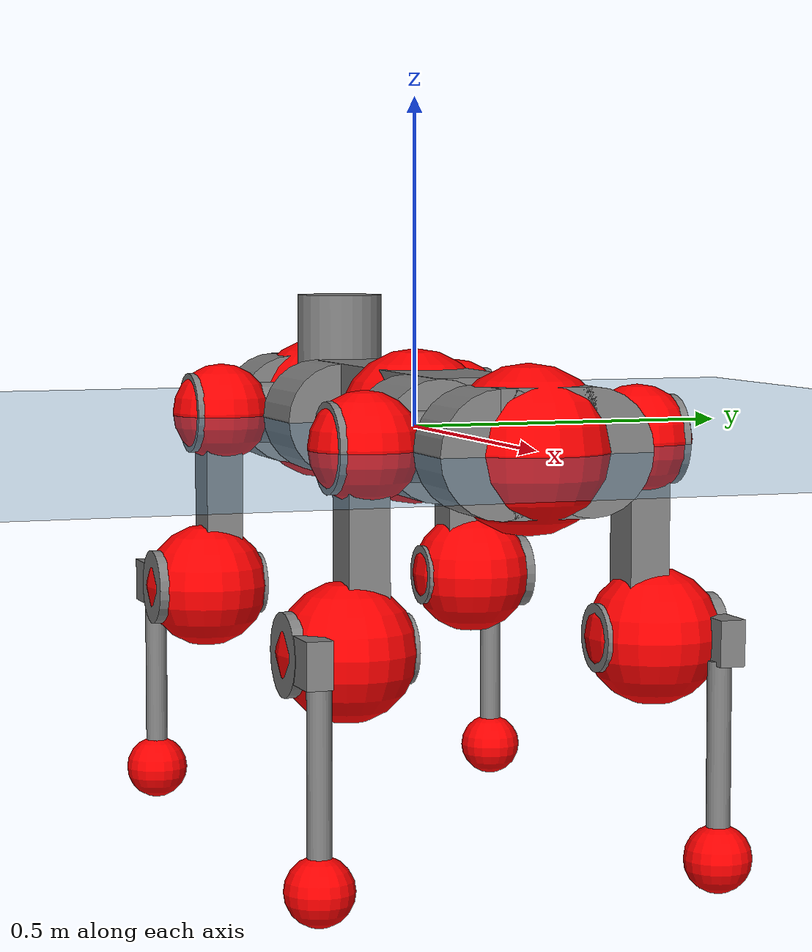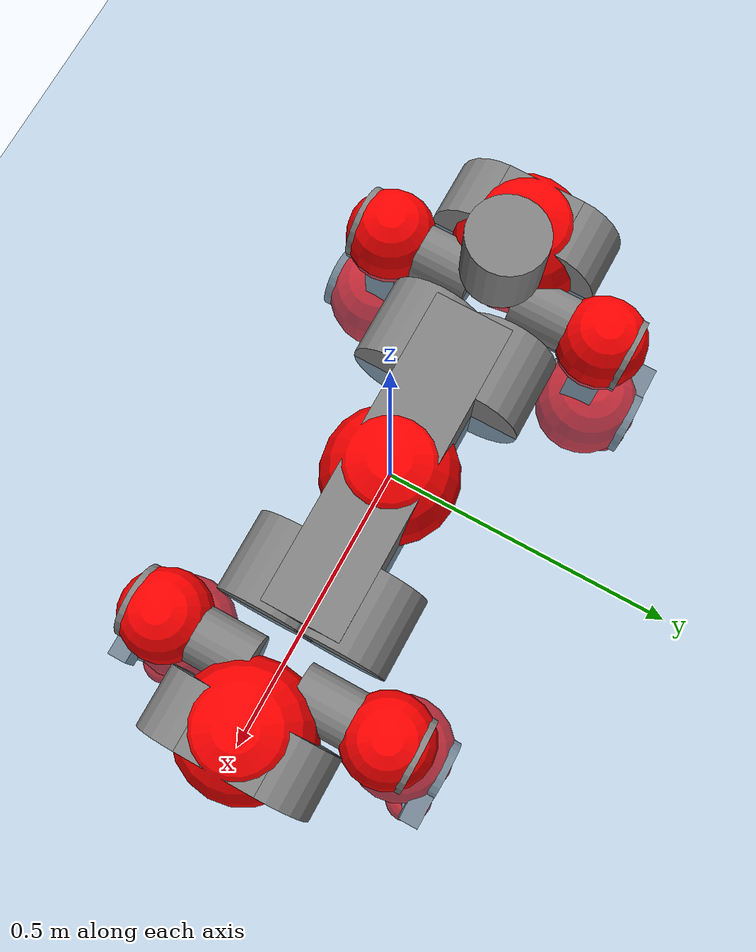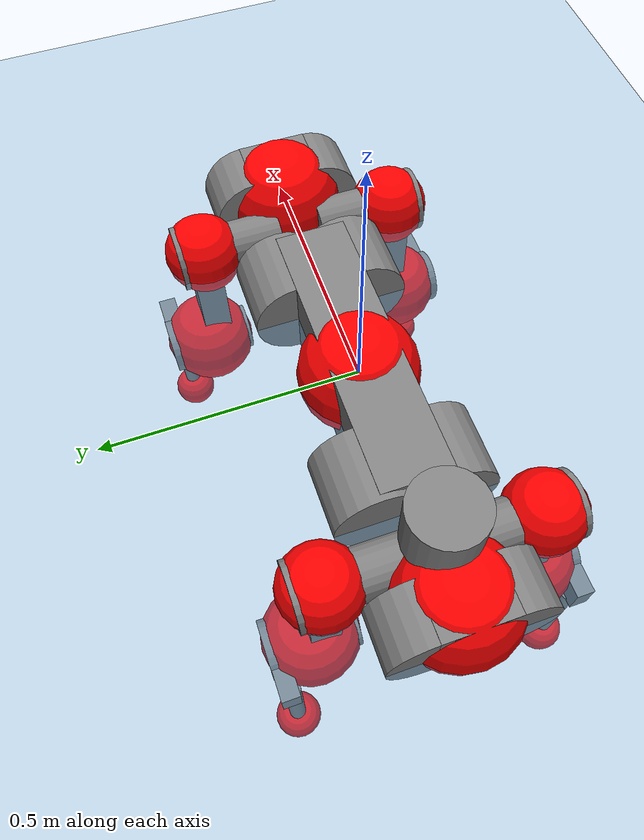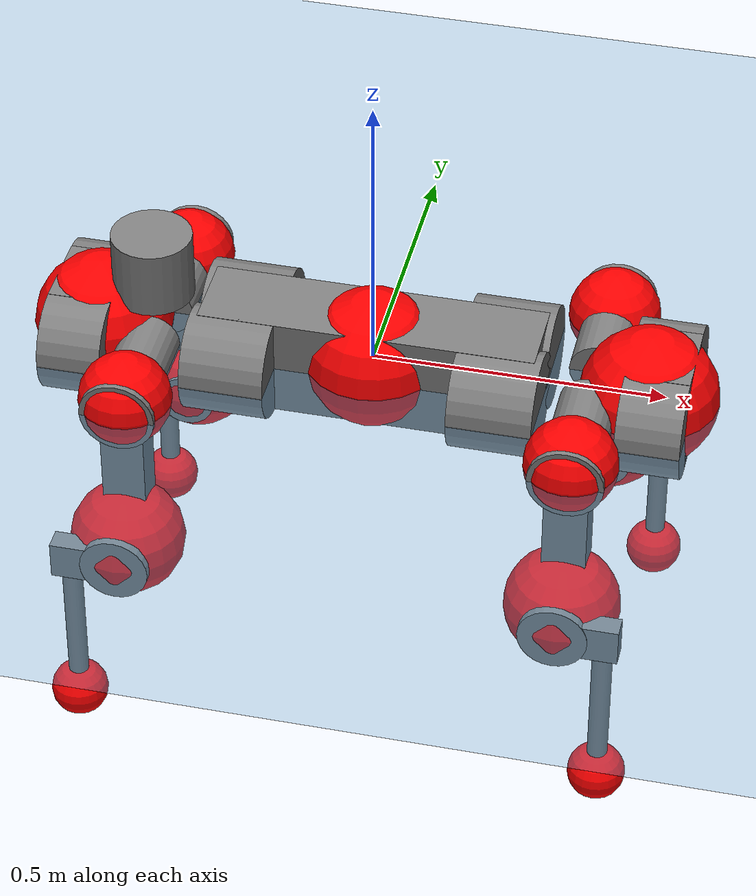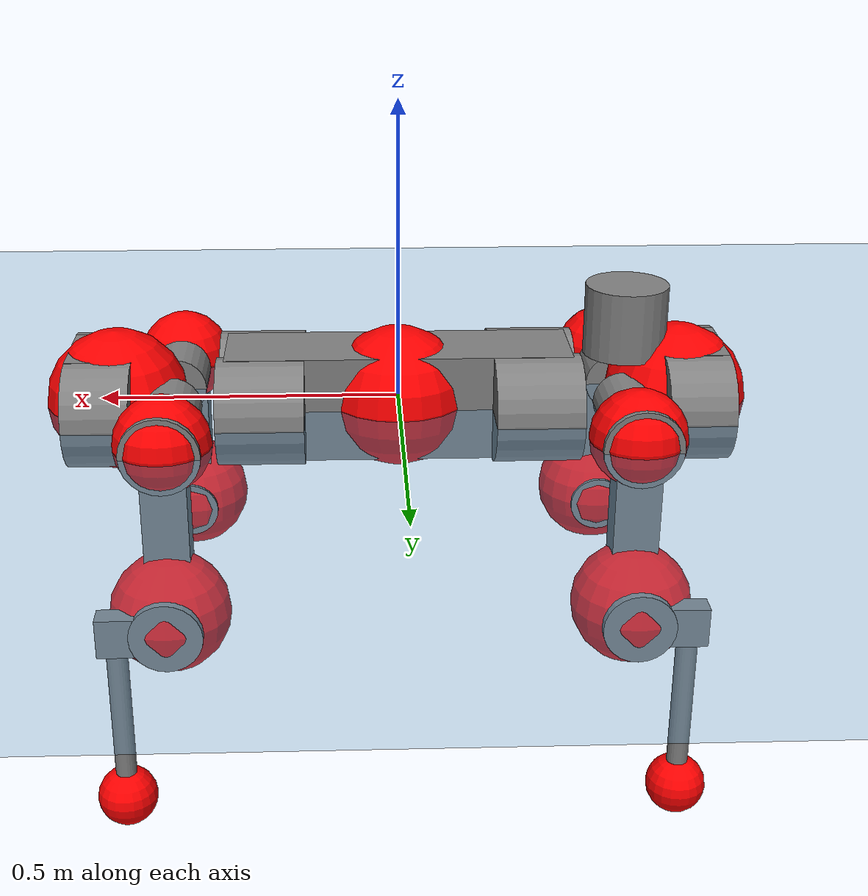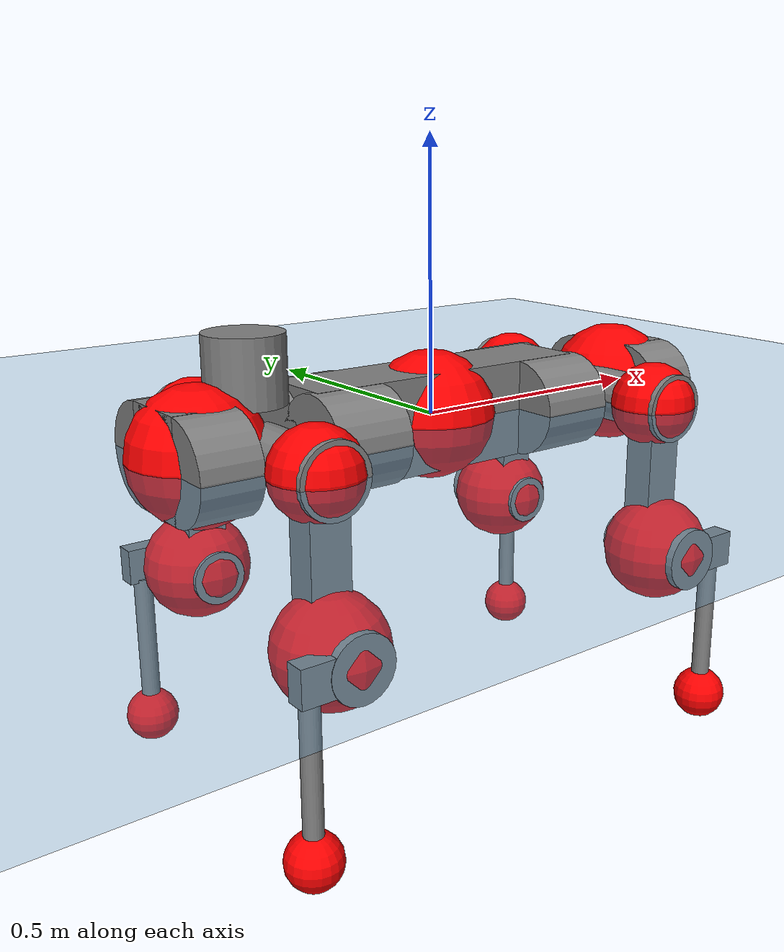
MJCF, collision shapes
<mujoco model="anymal_c">
  <compiler angle="radian" assetdir="assets" balanceinertia="true" inertiafromgeom="false"/>

  <option timestep="0.005" density="1.2" viscosity="2e-05"/>

  <size nkey="1"/>

  <visual>
    <quality shadowsize="8192"/>
    <map shadowclip="0.5"/>
  </visual>

  <default>
    <default class="/">
      <material specular="0" shininess="0.25"/>
      <geom contype="0" conaffinity="0" group="1" solref="-1000 -80"/>
      <site size="0.01 0.005 0.005" group="5"/>
      <general forcelimited="true" forcerange="-80 80" biastype="affine" gainprm="80" biasprm="0 -80 -2"/>
      <default class="anymal_c">
        <joint armature="0.01" damping="0.01" frictionloss="0.1"/>
        <default class="visual">
          <geom type="mesh" group="2"/>
          <default class="visual_zflip"/>
        </default>
        <default class="collision">
          <geom type="cylinder" group="3"/>
          <default class="foot">
            <geom size="0.03 0 0" type="sphere" condim="6" priority="1" friction="0.8 0.02 0.01" solimp="0.015 1 0.03"/>
          </default>
        </default>
      </default>
      <default class="reward_collision_sphere">
        <geom group="5" rgba="1 0 0 1"/>
      </default>
    </default>
  </default>

  <asset>
    <texture type="skybox" colorspace="auto" name="//unnamed_texture_0" builtin="gradient" rgb1="0.95 0.95 0.95" rgb2="0.95 0.95 0.95" width="100" height="600"/>
    <texture type="2d" colorspace="auto" name="texplane" builtin="checker" rgb1="0.345 0.575 0.748" rgb2="0.345 0.575 0.748" markrgb="1 1 1" width="512" height="512"/>
    <texture type="2d" colorspace="linear" name="base" file="base.png"/>
    <texture type="2d" colorspace="linear" name="top_shell" file="top_shell.png"/>
    <texture type="2d" colorspace="linear" name="bottom_shell" file="bottom_shell.png"/>
    <texture type="2d" colorspace="linear" name="remote" file="remote.png"/>
    <texture type="2d" colorspace="linear" name="hatch" file="hatch.png"/>
    <texture type="2d" colorspace="linear" name="handle" file="handle.png"/>
    <texture type="2d" colorspace="linear" name="face" file="face.png"/>
    <texture type="2d" colorspace="linear" name="battery" file="battery.png"/>
    <texture type="2d" colorspace="linear" name="lidar_cage" file="lidar_cage.png"/>
    <texture type="2d" colorspace="linear" name="depth_camera" file="depth_camera.png"/>
    <texture type="2d" colorspace="linear" name="wide_angle_camera" file="wide_angle_camera.png"/>
    <texture type="2d" colorspace="linear" name="lidar" file="lidar.png"/>
    <texture type="2d" colorspace="linear" name="drive" file="drive.png"/>
    <texture type="2d" colorspace="linear" name="hip_l" file="hip_l.png"/>
    <texture type="2d" colorspace="linear" name="shank_l" file="shank_l.png"/>
    <texture type="2d" colorspace="linear" name="foot" file="foot.png"/>
    <texture type="2d" colorspace="linear" name="thigh" file="thigh.png"/>
    <texture type="2d" colorspace="linear" name="shank_r" file="shank_r.png"/>
    <texture type="2d" colorspace="linear" name="hip_r" file="hip_r.png"/>
    <material name="MatPlane" class="/" texture="texplane" texuniform="true" texrepeat="2 2" specular="0.9" shininess="0.5"/>
    <material name="black_plastic" class="/" rgba="0.007 0.007 0.007 1"/>
    <material name="green" class="/" rgba="0.052 0.178 0.033 1"/>
    <material name="red" class="/" rgba="0.178 0.006 0.005 1"/>
    <material name="yellow" class="/" rgba="0.178 0.119 0.006 1"/>
    <material name="lwl" class="/" rgba="0.8 0.8 0.8 1"/>
    <material name="base" class="/" texture="base"/>
    <material name="top_shell" class="/" texture="top_shell"/>
    <material name="bottom_shell" class="/" texture="bottom_shell"/>
    <material name="hip_l" class="/" texture="hip_l"/>
    <material name="thigh" class="/" texture="thigh"/>
    <material name="shank_l" class="/" texture="shank_l"/>
    <material name="foot" class="/" texture="foot"/>
    <material name="hip_r" class="/" texture="hip_r"/>
    <material name="shank" class="/" texture="shank_r"/>
    <material name="hatch" class="/" texture="hatch"/>
    <material name="remote" class="/" texture="remote"/>
    <material name="handle" class="/" texture="handle"/>
    <material name="face" class="/" texture="face"/>
    <material name="depth_camera" class="/" texture="depth_camera"/>
    <material name="wide_angle_camera" class="/" texture="wide_angle_camera"/>
    <material name="battery" class="/" texture="battery"/>
    <material name="lidar_cage" class="/" texture="lidar_cage"/>
    <material name="lidar" class="/" texture="lidar"/>
    <material name="drive" class="/" texture="drive"/>
    <mesh name="base_0" class="/" file="base_0.obj"/>
    <mesh name="base_1" class="/" file="base_1.obj"/>
    <mesh name="base_2" class="/" file="base_2.obj"/>
    <mesh name="base_3" class="/" file="base_3.obj"/>
    <mesh name="base_4" class="/" file="base_4.obj"/>
    <mesh name="base_5" class="/" file="base_5.obj"/>
    <mesh name="top_shell" class="/" file="top_shell.obj"/>
    <mesh name="bottom_shell" class="/" file="bottom_shell.obj"/>
    <mesh name="remote" class="/" file="remote.obj"/>
    <mesh name="handle" class="/" file="handle.obj"/>
    <mesh name="face" class="/" file="face.obj"/>
    <mesh name="wide_angle_camera" class="/" file="wide_angle_camera.obj"/>
    <mesh name="depth_camera" class="/" file="depth_camera.obj"/>
    <mesh name="battery" class="/" file="battery.obj"/>
    <mesh name="lidar_cage" class="/" file="lidar_cage.obj"/>
    <mesh name="lidar" class="/" file="lidar.obj"/>
    <mesh name="drive" class="/" file="drive.obj"/>
    <mesh name="hip_l" class="/" file="hip_l.obj"/>
    <mesh name="thigh" class="/" file="thigh.obj"/>
    <mesh name="shank_l" class="/" file="shank_l.obj"/>
    <mesh name="foot" class="/" file="foot.obj"/>
    <mesh name="hip_r" class="/" file="hip_r.obj"/>
    <mesh name="hatch" class="/" file="hatch.obj"/>
    <mesh name="shank_r" class="/" file="shank_r.obj"/>
  </asset>

  <worldbody>
    <geom name="floor" class="/" size="100 100 0.125" type="plane" group="0" material="MatPlane"/>
    <light name="toplight_shadow" class="/" pos="0 0 5" dir="0.0990148 0.0990148 -0.990148" type="directional" ambient="0.04 0.04 0.04" diffuse="0.55 0.55 0.55" specular="0.12 0.12 0.12"/>
    <light name="toplight_fill" class="/" pos="0 0 5" dir="0.0990148 0.0990148 -0.990148" type="directional" castshadow="false" ambient="0.04 0.04 0.04" diffuse="0.3 0.3 0.3" specular="0.08 0.08 0.08"/>
    <body name="trunk" childclass="anymal_c" pos="0.000842464 6.04925e-05 0.00057326" quat="1 -0.000247224 0.000213578 -0.000274971">
      <inertial pos="0.00317702 -0.000590824 0.0485354" quat="0.499157 0.5008 0.501761 0.498274" mass="18.5216" diaginertia="0.800451 0.443421 0.206822"/>
      <joint name="//unnamed_joint_0" type="free" armature="0" damping="0" frictionloss="0"/>
      <geom name="//unnamed_geom_1" class="visual" material="green" mesh="base_0"/>
      <geom name="//unnamed_geom_2" class="visual" material="yellow" mesh="base_1"/>
      <geom name="//unnamed_geom_3" class="visual" material="red" mesh="base_2"/>
      <geom name="//unnamed_geom_4" class="visual" material="black_plastic" mesh="base_3"/>
      <geom name="//unnamed_geom_5" class="visual" material="lwl" mesh="base_4"/>
      <geom name="//unnamed_geom_6" class="visual" material="base" mesh="base_5"/>
      <geom name="trunk_1" class="collision" size="0.286977 0.0692703 0.0890618" type="box"/>
      <geom name="trunk_2" class="collision" size="0.0890618 0.0717442" pos="0.227368 0.0654268 0" quat="0.707107 0 0.707107 0"/>
      <geom name="trunk_3" class="collision" size="0.0890618 0.0717442" pos="-0.227368 0.0654268 0" quat="0.707107 0 0.707107 0"/>
      <geom name="trunk_4" class="collision" size="0.0890618 0.0717442" pos="0.227368 -0.0654268 0" quat="0.707107 0 0.707107 0"/>
      <geom name="trunk_5" class="collision" size="0.0890618 0.0717442" pos="-0.227368 -0.0654268 0" quat="0.707107 0 0.707107 0"/>
      <geom name="//unnamed_geom_12" class="visual" material="top_shell" mesh="top_shell"/>
      <geom name="//unnamed_geom_13" class="visual" material="bottom_shell" mesh="bottom_shell"/>
      <geom name="//unnamed_geom_14" class="visual" material="remote" mesh="remote"/>
      <geom name="//unnamed_geom_15" class="visual" material="handle" mesh="handle"/>
      <geom name="//unnamed_geom_16" class="visual" pos="0.433305 0 0" quat="1 0 0 0" material="face" mesh="face"/>
      <geom name="trunk_6" class="collision" size="0.0544267 0.0692703 0.0890618" pos="0.490801 0 0" type="box"/>
      <geom name="//unnamed_geom_18" class="collision" size="0.0890618 0.0544267" pos="0.490801 0.0654268 0" quat="0.707107 0 0.707107 0"/>
      <geom name="//unnamed_geom_19" class="collision" size="0.0890618 0.0544267" pos="0.490801 -0.0654268 0" quat="0.707107 0 0.707107 0"/>
      <geom name="//unnamed_geom_20" class="visual" pos="0.482592 0 -0.028439" quat="0.965926 0 0.258819 0" material="depth_camera" mesh="depth_camera"/>
      <geom name="//unnamed_geom_21" class="visual" pos="0.536274 0 0.0148007" material="wide_angle_camera" mesh="wide_angle_camera"/>
      <geom name="//unnamed_geom_22" class="visual_zflip" pos="-0.433305 0 0" quat="0 0 0 1" material="face" mesh="face"/>
      <geom name="trunk_7" class="collision" size="0.0544267 0.0692703 0.0890618" pos="-0.490801 0 0" quat="0 0 0 1" type="box"/>
      <geom name="//unnamed_geom_24" class="collision" size="0.0890618 0.0544267" pos="-0.490801 -0.0654268 0" quat="0 -0.707107 0 0.707107"/>
      <geom name="//unnamed_geom_25" class="collision" size="0.0890618 0.0544267" pos="-0.490801 0.0654268 0" quat="0 -0.707107 0 0.707107"/>
      <geom name="//unnamed_geom_26" class="visual" pos="-0.482592 0 -0.028439" quat="0 -0.258819 0 0.965926" material="depth_camera" mesh="depth_camera"/>
      <geom name="//unnamed_geom_27" class="visual_zflip" pos="-0.536274 0 0.0148007" quat="0 0 0 1" material="wide_angle_camera" mesh="wide_angle_camera"/>
      <geom name="//unnamed_geom_28" class="visual" material="battery" mesh="battery"/>
      <geom name="//unnamed_geom_29" class="visual" pos="0 0.0700098 0.0291522" quat="0.683013 -0.183013 0.183013 0.683013" material="depth_camera" mesh="depth_camera"/>
      <geom name="//unnamed_geom_30" class="visual" pos="0 -0.0700098 0.0291522" quat="0.683013 0.183013 0.183013 -0.683013" material="depth_camera" mesh="depth_camera"/>
      <geom name="//unnamed_geom_31" class="visual" pos="-0.380514 0 0.0726686" quat="1 0 0 0" material="lidar_cage" mesh="lidar_cage"/>
      <geom name="trunk_8" class="collision" size="0.0692703 0.0593745" pos="-0.380514 0 0.13199"/>
      <geom name="//unnamed_geom_33" class="visual" pos="-0.380514 -4.3491e-05 0.140592" quat="0.707107 0 0 -0.707107" material="lidar" mesh="lidar"/>
      <geom name="//unnamed_geom_34" class="visual" pos="0.313506 0.0972248 -9.31852e-10" quat="0.258819 0.965926 0 0" material="drive" mesh="drive"/>
      <geom name="//unnamed_geom_35" class="visual" pos="0.313506 -0.0972248 9.31852e-10" quat="0.258819 -0.965926 0 0" material="drive" mesh="drive"/>
      <geom name="//unnamed_geom_36" class="visual" pos="-0.313506 0.0972248 9.31852e-10" quat="0 0 0.965926 -0.258819" material="drive" mesh="drive"/>
      <geom name="//unnamed_geom_37" class="visual" pos="-0.313506 -0.0972248 -9.31852e-10" quat="0 0 -0.965926 -0.258819" material="drive" mesh="drive"/>
      <geom name="//unnamed_geom_38" class="visual" pos="0.121263 0 0.0721743" quat="1 0 0 0" material="hatch" mesh="hatch"/>
      <geom name="//unnamed_geom_39" class="reward_collision_sphere" size="0.118749"/>
      <geom name="//unnamed_geom_40" class="reward_collision_sphere" size="0.118749" pos="0.470416 0 0"/>
      <geom name="//unnamed_geom_41" class="reward_collision_sphere" size="0.118749" pos="-0.470416 0 0"/>
      <site name="imu" pos="0.256468 0.00467174 0.0452537" size="0.00989576"/>
      <camera name="track" pos="0 -1.86934 0" quat="0.707107 0.707107 0 0" mode="trackcom"/>
      <camera name="ego_camera" pos="0.470416 0 -0.0395476" quat="-0.5 -0.5 0.5 0.5"/>
      <body name="LF_HIP" pos="0.314098 0.0977214 0.000651232" quat="0.258803 0.96593 0.0001374 -4.27901e-05">
        <inertial pos="0.0598701 -0.0143294 -0.00849838" quat="-0.131364 0.708993 -0.133181 0.679952" mass="2.69329" diaginertia="0.00730702 0.00350276 0.0030853"/>
        <joint name="LF_HAA" pos="0 0 0" axis="0.999997 -0.000176714 -0.00231017" range="-0.720734 0.491862" armature="0.00952447" damping="0.00903707" frictionloss="0.0982073"/>
        <geom name="//unnamed_geom_42" class="visual" pos="0 -5.48166e-05 9.00358e-06" quat="0.258819 -0.965926 0 0" material="hip_l" mesh="hip_l"/>
        <geom name="//unnamed_geom_43" class="visual" pos="0.0626176 -0.0744362 -0.0433753" quat="0.183013 -0.683013 0.683013 0.183013" material="drive" mesh="drive"/>
        <geom name="//unnamed_geom_44" class="collision" size="0.0494788 0.0692703" pos="0.0626176 -0.0111785 -0.0068269" quat="-0.353553 -0.612372 0.612372 -0.353553"/>
        <body name="LF_THIGH" pos="0.0629407 -0.0677017 -0.0408342" quat="0.183015 -0.683004 0.683019 0.183021">
          <inertial pos="0.0323042 0.000122485 -0.243492" quat="0.993125 -0.0071251 -0.0805807 0.0846075" mass="2.95916" diaginertia="0.0378224 0.0214754 0.0039649"/>
          <joint name="LF_HFE" pos="0 0 0" axis="1 -0.000523604 0.00052723" range="-3.14244 3.14556" armature="0.010087" damping="0.00494516" frictionloss="0.0990092"/>
          <geom name="//unnamed_geom_45" class="visual" pos="0.00220249 3.47061e-06 0" quat="0.707107 0 0 -0.707107" material="thigh" mesh="thigh"/>
          <geom name="//unnamed_geom_46" class="collision" size="0.0643224 0.039583" pos="0.0418148 0 0" quat="0.5 0.5 -0.5 -0.5"/>
          <geom name="//unnamed_geom_47" class="collision" size="0.0371091 0.0296873 0.139841" pos="0.0313611 0 -0.139716" quat="0.707107 0 0 -0.707107" type="box"/>
          <geom name="//unnamed_geom_48" class="visual" pos="0.104851 0 -0.281776" quat="1 0 0 0" material="drive" mesh="drive"/>
          <geom name="//unnamed_geom_49" class="collision" size="0.0494788 0.0692703" pos="0.0316747 0 -0.281776" quat="0.707107 0 0.707107 0"/>
          <geom name="//unnamed_geom_50" class="reward_collision_sphere" size="0.0791661" pos="0.0261342 0 0"/>
          <body name="LF_SHANK" pos="0.105678 8.94798e-05 -0.282647" quat="1 1.72429e-05 -8.25213e-07 -1.31095e-05">
            <inertial pos="0.00529142 -0.0565321 -0.080648" quat="0.992908 -0.116084 -0.00130828 -0.02561" mass="0.571025" diaginertia="0.0125831 0.00656744 0.00106133"/>
            <joint name="LF_KFE" pos="0 0 0" axis="1 0.000168028 -0.000284286" range="-3.15749 3.1454" armature="0.00989423" damping="0.00912106" frictionloss="0.0993734"/>
            <geom name="//unnamed_geom_51" class="visual" pos="0.000718185 0.0038294 0" quat="0.707107 0 0 -0.707107" material="shank_l" mesh="shank_l"/>
            <geom name="LF_kfe_act" class="collision" size="0.0593745 0.0197915" pos="0.0209074 0 0" quat="0.5 0.5 -0.5 -0.5"/>
            <geom name="//unnamed_geom_53" class="collision" size="0.0568996 0.0333982 0.0188019" pos="0.0209074 -0.0537425 0" quat="0.5 0.5 -0.5 -0.5" type="box"/>
            <geom name="//unnamed_geom_54" class="visual" pos="0.0136419 -0.0809701 -0.334147" quat="0.382683 0 0 -0.92388" material="foot" mesh="foot"/>
            <geom name="LF_calf" class="collision" size="0.0173176 0.13978" pos="0.0136421 -0.0822041 -0.167074" quat="0.707107 0 0 -0.707107"/>
            <geom name="LF_foot" class="foot" size="0.0295942" pos="0.0136421 -0.0822041 -0.311902" quat="0.707107 0 0 -0.707107"/>
            <geom name="//unnamed_geom_57" class="reward_collision_sphere" size="0.0989576" pos="-0.0522684 0 0"/>
            <geom name="//unnamed_geom_58" class="reward_collision_sphere" size="0.0494788" pos="0.0136421 -0.0822041 -0.311902"/>
            <site name="LF_foot" class="foot" pos="0.0136421 -0.0822041 -0.311902" quat="0.707107 0 0 -0.707107" size="0.00989576"/>
          </body>
        </body>
      </body>
      <body name="RF_HIP" pos="0.313366 -0.0984549 8.8829e-05" quat="0.258835 -0.965922 4.50201e-05 -6.98515e-05">
        <inertial pos="0.0588945 0.0155208 -0.00806846" quat="0.135212 0.679091 0.1278 0.710084" mass="2.69831" diaginertia="0.00738294 0.00350741 0.0031261"/>
        <joint name="RF_HAA" pos="0 0 0" axis="0.999999 0.000375767 -0.00116133" range="-0.509204 0.718363" armature="0.00989534" damping="0.00909206" frictionloss="0.100024"/>
        <geom name="//unnamed_geom_59" class="visual" pos="0 5.48162e-05 9.00356e-06" quat="0.258819 0.965926 0 0" material="hip_r" mesh="hip_r"/>
        <geom name="//unnamed_geom_60" class="visual" pos="0.0626176 0.0744362 -0.0433753" quat="0.183013 0.683013 0.683013 -0.183013" material="drive" mesh="drive"/>
        <geom name="//unnamed_geom_61" class="collision" size="0.0494788 0.0692703" pos="0.0626176 0.0111785 -0.0068269" quat="-0.353553 0.612372 0.612372 0.353553"/>
        <body name="RF_THIGH" pos="0.0624177 0.0679163 -0.0407478" quat="0.182994 0.683014 0.683019 -0.183003">
          <inertial pos="0.0321642 -2.49503e-05 -0.242816" quat="0.99288 -0.00687867 -0.0821986 0.0859354" mass="2.99101" diaginertia="0.0381021 0.0213551 0.00395852"/>
          <joint name="RF_HFE" pos="0 0 0" axis="0.999999 0.00117373 0.000856306" stiffness="0.00595011" range="-3.14372 3.12648" armature="0.010224" damping="0.0102758" frictionloss="0.101264"/>
          <geom name="//unnamed_geom_62" class="visual" pos="0.00220249 3.47061e-06 0" quat="0.707107 0 0 -0.707107" material="thigh" mesh="thigh"/>
          <geom name="//unnamed_geom_63" class="collision" size="0.0643224 0.039583" pos="0.0418148 0 0" quat="0.5 0.5 0.5 0.5"/>
          <geom name="//unnamed_geom_64" class="collision" size="0.0371091 0.0296873 0.139841" pos="0.0313611 0 -0.139716" quat="0.707107 0 0 0.707107" type="box"/>
          <geom name="//unnamed_geom_65" class="visual" pos="0.104851 0 -0.281776" quat="1 0 0 0" material="drive" mesh="drive"/>
          <geom name="//unnamed_geom_66" class="collision" size="0.0494788 0.0692703" pos="0.0316747 0 -0.281776" quat="0.707107 0 0.707107 0"/>
          <geom name="//unnamed_geom_67" class="reward_collision_sphere" size="0.0791661" pos="0.0261342 0 0"/>
          <body name="RF_SHANK" pos="0.10462 4.80995e-05 -0.281791" quat="1 -3.69362e-06 -2.5787e-05 4.27992e-05">
            <inertial pos="0.00637527 0.0573038 -0.0787664" quat="0.992781 0.116499 -0.00269642 0.0284086" mass="0.570064" diaginertia="0.0125442 0.00657419 0.00104968"/>
            <joint name="RF_KFE" pos="0 0 0" axis="0.999997 -1.34117e-05 0.00226447" range="-3.14325 3.15018" armature="0.00951192" damping="0.00913555" frictionloss="0.0989181"/>
            <geom name="//unnamed_geom_68" class="visual" pos="0.000718181 -0.00382939 0" quat="0.707107 0 0 0.707107" material="shank" mesh="shank_r"/>
            <geom name="RF_kfe_act" class="collision" size="0.0593745 0.0197915" pos="0.0209074 0 0" quat="0.5 0.5 0.5 0.5"/>
            <geom name="//unnamed_geom_70" class="collision" size="0.0568996 0.0333982 0.0188019" pos="0.0209074 0.0537425 0" quat="0.5 0.5 0.5 0.5" type="box"/>
            <geom name="//unnamed_geom_71" class="visual" pos="0.0136422 0.0809701 -0.334147" quat="0.382683 0 0 0.92388" material="foot" mesh="foot"/>
            <geom name="RF_calf" class="collision" size="0.0173176 0.13978" pos="0.0136421 0.0822041 -0.167074" quat="0.707107 0 0 0.707107"/>
            <geom name="RF_foot" class="foot" size="0.0299982" pos="0.0136421 0.0822041 -0.311902" quat="0.707107 0 0 0.707107"/>
            <geom name="//unnamed_geom_74" class="reward_collision_sphere" size="0.0989576" pos="-0.0522684 0 0"/>
            <geom name="//unnamed_geom_75" class="reward_collision_sphere" size="0.0494788" pos="0.0136421 0.0822041 -0.311902"/>
            <site name="RF_foot" class="foot" pos="0.0136421 0.0822041 -0.311902" quat="0.707107 0 0 0.707107" size="0.00989576"/>
          </body>
        </body>
      </body>
      <body name="LH_HIP" pos="-0.313019 0.0977136 0.000503559" quat="2.91187e-05 4.69088e-05 0.965924 -0.258826">
        <inertial pos="0.0594731 0.0143962 -0.00810347" quat="0.13524 0.679069 0.127905 0.710081" mass="2.69324" diaginertia="0.00728659 0.00355217 0.00310066"/>
        <joint name="LH_HAA" pos="0 0 0" axis="0.999999 0.00121155 -0.000179517" range="-0.485825 0.719651" armature="0.0098379" damping="0.0132891" frictionloss="0.0980944"/>
        <geom name="//unnamed_geom_76" class="visual" pos="0 5.48162e-05 9.00356e-06" quat="-0.258819 -0.965926 0 0" material="hip_r" mesh="hip_r"/>
        <geom name="//unnamed_geom_77" class="visual" pos="0.0626176 0.0744362 -0.0433753" quat="0.183013 0.683013 0.683013 -0.183013" material="drive" mesh="drive"/>
        <geom name="//unnamed_geom_78" class="collision" size="0.0494788 0.0692703" pos="0.0626176 0.0111785 -0.0068269" quat="-0.353553 0.612372 0.612372 0.353553"/>
        <body name="LH_THIGH" pos="0.0620829 0.0674388 -0.0413841" quat="0.183028 0.68309 0.682939 -0.182987">
          <inertial pos="0.0325775 -1.75978e-05 -0.243281" quat="0.992785 -0.00477703 -0.0798033 0.0893667" mass="2.95638" diaginertia="0.0376436 0.0213092 0.00395042"/>
          <joint name="LH_HFE" pos="0 0 0" axis="0.999999 0.000875373 0.000489907" stiffness="0.000969159" range="-3.1387 3.13075" armature="0.00990696" damping="0.0103081" frictionloss="0.0980167"/>
          <geom name="//unnamed_geom_79" class="visual" pos="0.00220249 3.47061e-06 0" quat="0.707107 0 0 -0.707107" material="thigh" mesh="thigh"/>
          <geom name="//unnamed_geom_80" class="collision" size="0.0643224 0.039583" pos="0.0418148 0 0" quat="0.5 0.5 -0.5 -0.5"/>
          <geom name="//unnamed_geom_81" class="collision" size="0.0371091 0.0296873 0.139841" pos="0.0313611 0 -0.139716" quat="0.707107 0 0 -0.707107" type="box"/>
          <geom name="//unnamed_geom_82" class="visual" pos="0.104851 0 -0.281776" quat="1 0 0 0" material="drive" mesh="drive"/>
          <geom name="//unnamed_geom_83" class="collision" size="0.0494788 0.0692703" pos="0.0316747 0 -0.281776" quat="0.707107 0 0.707107 0"/>
          <geom name="//unnamed_geom_84" class="reward_collision_sphere" size="0.0791661" pos="0.0261342 0 0"/>
          <body name="LH_SHANK" pos="0.105491 -0.000847185 -0.281266" quat="1 -4.09777e-06 -5.5947e-05 9.53701e-05">
            <inertial pos="0.00495975 0.05804 -0.0805456" quat="0.992825 0.116807 0.00207674 0.0255093" mass="0.574828" diaginertia="0.0126686 0.00657021 0.00105326"/>
            <joint name="LH_KFE" pos="0 0 0" axis="1 -1.07211e-05 0.000252715" range="-3.1374 3.14048" armature="0.00989935" damping="0.0102636" frictionloss="0.0950913"/>
            <geom name="//unnamed_geom_85" class="visual" pos="0.000718181 -0.00382939 0" quat="-0.707107 0 0 -0.707107" material="shank" mesh="shank_r"/>
            <geom name="LH_kfe_act" class="collision" size="0.0593745 0.0197915" pos="0.0209074 0 0" quat="0.5 0.5 -0.5 -0.5"/>
            <geom name="//unnamed_geom_87" class="collision" size="0.0568996 0.0333982 0.0188019" pos="0.0209074 0.0537425 0" quat="0.5 0.5 -0.5 -0.5" type="box"/>
            <geom name="//unnamed_geom_88" class="visual" pos="0.0136422 0.0809701 -0.334147" quat="-0.382683 0 0 -0.92388" material="foot" mesh="foot"/>
            <geom name="LH_calf" class="collision" size="0.0173176 0.13978" pos="0.0136421 0.0822041 -0.167074" quat="0.707107 0 0 -0.707107"/>
            <geom name="LH_foot" class="foot" size="0.0308063" pos="0.0136421 0.0822041 -0.311902" quat="0.707107 0 0 -0.707107"/>
            <geom name="//unnamed_geom_91" class="reward_collision_sphere" size="0.0989576" pos="-0.0522684 0 0"/>
            <geom name="//unnamed_geom_92" class="reward_collision_sphere" size="0.0494788" pos="0.0136421 0.0822041 -0.311902"/>
            <site name="LH_foot" class="foot" pos="0.0136421 0.0822041 -0.311902" quat="0.707107 0 0 -0.707107" size="0.00989576"/>
          </body>
        </body>
      </body>
      <body name="RH_HIP" pos="-0.313449 -0.0972346 -0.000184792" quat="4.66362e-05 -1.02866e-05 -0.96592 -0.258842">
        <inertial pos="0.0594374 -0.0146727 -0.00754252" quat="-0.1279 0.709794 -0.135366 0.679346" mass="2.67135" diaginertia="0.00725166 0.00347416 0.00308984"/>
        <joint name="RH_HAA" pos="0 0 0" axis="1 0.000321129 0.000632775" stiffness="0.000263429" range="-0.720181 0.504995" armature="0.0102728" damping="0.0112341" frictionloss="0.0995355"/>
        <geom name="//unnamed_geom_93" class="visual" pos="0 -5.48166e-05 9.00358e-06" quat="-0.258819 0.965926 0 0" material="hip_l" mesh="hip_l"/>
        <geom name="//unnamed_geom_94" class="visual" pos="0.0626176 -0.0744362 -0.0433753" quat="-0.183013 0.683013 -0.683013 -0.183013" material="drive" mesh="drive"/>
        <geom name="//unnamed_geom_95" class="collision" size="0.0494788 0.0692703" pos="0.0626176 -0.0111785 -0.0068269" quat="0.353553 0.612372 -0.612372 0.353553"/>
        <body name="RH_THIGH" pos="0.0629366 -0.0682034 -0.0415894" quat="-0.18292 0.682992 -0.68306 -0.183007">
          <inertial pos="0.0332529 -0.000882691 -0.242754" quat="0.993173 -0.00488629 -0.0806543 0.0841325" mass="3.01952" diaginertia="0.0378556 0.0215493 0.00395072"/>
          <joint name="RH_HFE" pos="0 0 0" axis="0.999998 0.000598095 0.00194496" range="-3.14144 3.14142" armature="0.00991983" damping="0.00758133" frictionloss="0.101742"/>
          <geom name="//unnamed_geom_96" class="visual" pos="0.00220249 3.47061e-06 0" quat="0.707107 0 0 -0.707107" material="thigh" mesh="thigh"/>
          <geom name="//unnamed_geom_97" class="collision" size="0.0643224 0.039583" pos="0.0418148 0 0" quat="0.5 0.5 0.5 0.5"/>
          <geom name="//unnamed_geom_98" class="collision" size="0.0371091 0.0296873 0.139841" pos="0.0313611 0 -0.139716" quat="0.707107 0 0 0.707107" type="box"/>
          <geom name="//unnamed_geom_99" class="visual" pos="0.104851 0 -0.281776" quat="1 0 0 0" material="drive" mesh="drive"/>
          <geom name="//unnamed_geom_100" class="collision" size="0.0494788 0.0692703" pos="0.0316747 0 -0.281776" quat="0.707107 0 0.707107 0"/>
          <geom name="//unnamed_geom_101" class="reward_collision_sphere" size="0.0791661" pos="0.0261342 0 0"/>
          <body name="RH_SHANK" pos="0.104653 8.3106e-05 -0.281817" quat="1 -5.4277e-05 -1.81278e-05 -0.00016282">
            <inertial pos="0.00592438 -0.0571957 -0.0797093" quat="0.992936 -0.115815 -0.00161858 -0.0257414" mass="0.581981" diaginertia="0.0127545 0.00668588 0.00106535"/>
            <joint name="RH_KFE" pos="0 0 0" axis="0.999979 0.00325608 0.00554682" stiffness="0.000615845" range="-3.12727 3.12056" armature="0.0100914" damping="0.0021824" frictionloss="0.0979805"/>
            <geom name="//unnamed_geom_102" class="visual" pos="0.000718185 0.0038294 0" quat="0.707107 0 0 -0.707107" material="shank_l" mesh="shank_l"/>
            <geom name="RH_kfe_act" class="collision" size="0.0593745 0.0197915" pos="0.0209074 0 0" quat="0.5 0.5 0.5 0.5"/>
            <geom name="//unnamed_geom_104" class="collision" size="0.0568996 0.0333982 0.0188019" pos="0.0209074 -0.0537425 0" quat="0.5 0.5 0.5 0.5" type="box"/>
            <geom name="//unnamed_geom_105" class="visual" pos="0.0136419 -0.0809701 -0.334147" quat="0.382683 0 0 -0.92388" material="foot" mesh="foot"/>
            <geom name="RH_calf" class="collision" size="0.0173176 0.13978" pos="0.0136421 -0.0822041 -0.167074" quat="0.707107 0 0 0.707107"/>
            <geom name="RH_foot" class="foot" size="0.027949" pos="0.0136421 -0.0822041 -0.311902" quat="0.707107 0 0 0.707107"/>
            <geom name="//unnamed_geom_108" class="reward_collision_sphere" size="0.0989576" pos="-0.0522684 0 0"/>
            <geom name="//unnamed_geom_109" class="reward_collision_sphere" size="0.0494788" pos="0.0136421 -0.0822041 -0.311902"/>
            <site name="RH_foot" class="foot" pos="0.0136421 -0.0822041 -0.311902" quat="0.707107 0 0 0.707107" size="0.00989576"/>
          </body>
        </body>
      </body>
    </body>
  </worldbody>

  <contact>
    <pair class="/" geom1="floor" geom2="LF_foot" name="//unnamed_contact_0"/>
    <pair class="/" geom1="floor" geom2="RF_foot" name="//unnamed_contact_1"/>
    <pair class="/" geom1="floor" geom2="LH_foot" name="//unnamed_contact_2"/>
    <pair class="/" geom1="floor" geom2="RH_foot" name="//unnamed_contact_3"/>
  </contact>

  <actuator>
    <general name="LF_HAA" class="/" joint="LF_HAA" forcerange="-81.4211 81.4211" gainprm="82.1089" biasprm="0 -82.1089 -2.00337"/>
    <general name="LF_HFE" class="/" joint="LF_HFE" forcerange="-78.4008 78.4008" gainprm="82.1089" biasprm="0 -82.1089 -2.00337"/>
    <general name="LF_KFE" class="/" joint="LF_KFE" forcerange="-80.8018 80.8018" gainprm="82.1089" biasprm="0 -82.1089 -2.00337"/>
    <general name="RF_HAA" class="/" joint="RF_HAA" forcerange="-79.4805 79.4805" gainprm="82.1089" biasprm="0 -82.1089 -2.00337"/>
    <general name="RF_HFE" class="/" joint="RF_HFE" forcerange="-77.6916 77.6916" gainprm="82.1089" biasprm="0 -82.1089 -2.00337"/>
    <general name="RF_KFE" class="/" joint="RF_KFE" forcerange="-81.9352 81.9352" gainprm="82.1089" biasprm="0 -82.1089 -2.00337"/>
    <general name="LH_HAA" class="/" joint="LH_HAA" forcerange="-80.0445 80.0445" gainprm="82.1089" biasprm="0 -82.1089 -2.00337"/>
    <general name="LH_HFE" class="/" joint="LH_HFE" forcerange="-77.3496 77.3496" gainprm="82.1089" biasprm="0 -82.1089 -2.00337"/>
    <general name="LH_KFE" class="/" joint="LH_KFE" forcerange="-79.8205 79.8205" gainprm="82.1089" biasprm="0 -82.1089 -2.00337"/>
    <general name="RH_HAA" class="/" joint="RH_HAA" forcerange="-79.7184 79.7184" gainprm="82.1089" biasprm="0 -82.1089 -2.00337"/>
    <general name="RH_HFE" class="/" joint="RH_HFE" forcerange="-78.3412 78.3412" gainprm="82.1089" biasprm="0 -82.1089 -2.00337"/>
    <general name="RH_KFE" class="/" joint="RH_KFE" forcerange="-81.2003 81.2003" gainprm="82.1089" biasprm="0 -82.1089 -2.00337"/>
  </actuator>

  <sensor>
    <gyro site="imu" name="imu_angular_velocity"/>
    <velocimeter site="imu" name="imu_linear_velocity"/>
    <framelinvel objtype="site" objname="LF_foot" name="LF_foot_global_linear_velocity"/>
    <framelinvel objtype="site" objname="RF_foot" name="RF_foot_global_linear_velocity"/>
    <framelinvel objtype="site" objname="LH_foot" name="LH_foot_global_linear_velocity"/>
    <framelinvel objtype="site" objname="RH_foot" name="RH_foot_global_linear_velocity"/>
  </sensor>

  <keyframe>
    <key name="home" qpos="0 0 0.55 1 0 0 0 0 0.4 -0.8 0 -0.4 0.8 0 -0.4 0.8 0 0.4 -0.8"/>
  </keyframe>
</mujoco>
